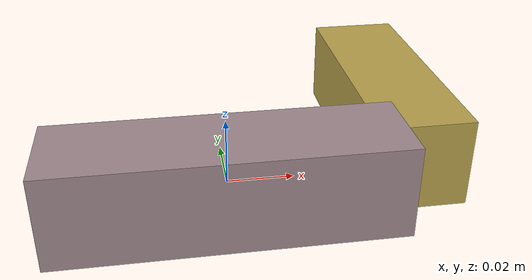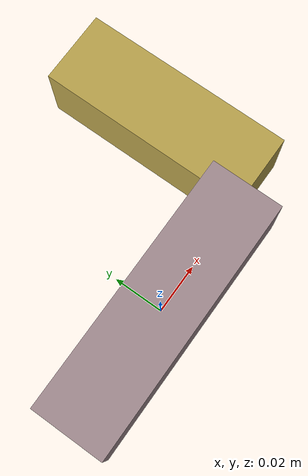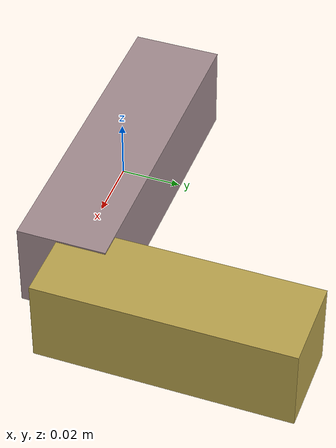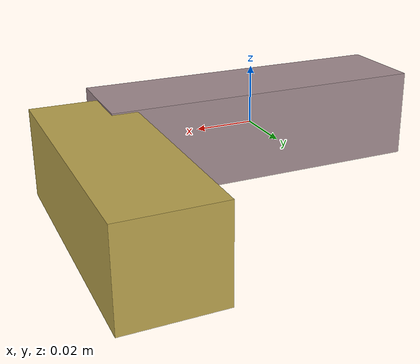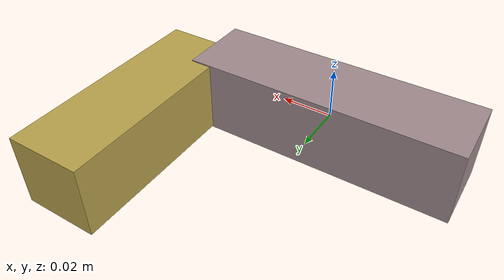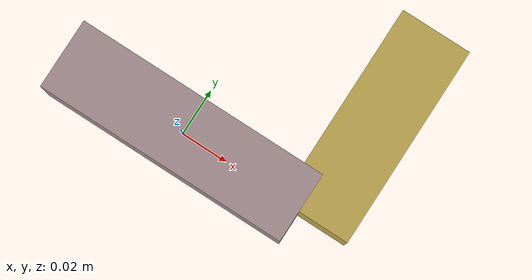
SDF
<sdf version="1.4"><world name="default"><model name="object0"><link name="link1"><pose>0 0 0 0 0 0</pose><inertial><pose>0 0 0 0 0 0</pose><mass>0.05833778502752931</mass><inertia><ixx>8.750667754129395e-06</ixx><ixy>0</ixy><iyy>6.111425083430805e-05</iyy><ixz>0</ixz><iyz>0</iyz><izz>6.111425083430805e-05</izz></inertia></inertial><visual name="link1_visual"><pose>0 0  0 0 0 0</pose><geometry><box><size>0.1080329352361654 0.03 0.03</size></box></geometry><material><diffuse>0.6344997943023215 0.5466622439992497 0.5627334479981119 1</diffuse></material></visual><collision><pose>0 0  0 0 0 0</pose><geometry><box><size>0.1080329352361654 0.03 0.03</size></box></geometry></collision></link><link name="link2"><pose>0.06069603099464526 0.041405237519051535 0 0 0 0</pose><inertial><pose>0 0 0 0 0 0</pose><mass>0.04647942220211296</mass><inertia><ixx>3.1952906385149595e-05</ixx><ixy>0</ixy><iyy>6.743389504489888e-06</iyy><ixz>0</ixz><iyz>0</iyz><izz>3.2181430210976654e-05</izz></inertia></inertial><visual name="link2_visual"><pose>0 0  0 0 0 0</pose><geometry><box><size>0.03 0.08607300407798696 0.028999999999999998</size></box></geometry><material><diffuse>0.7285397261734247 0.6411447485815738 0.30140148108544773 1</diffuse></material></visual><collision><pose>0 0  0 0 0 0</pose><geometry><box><size>0.03 0.08607300407798696 0.028999999999999998</size></box></geometry></collision></link><joint name="link_joint_0" type="fixed"><parent>link1</parent><child>link2</child><pose>0 0 0 0 0 0</pose><axis><xyz>0 0 1</xyz></axis></joint></model></world></sdf>
